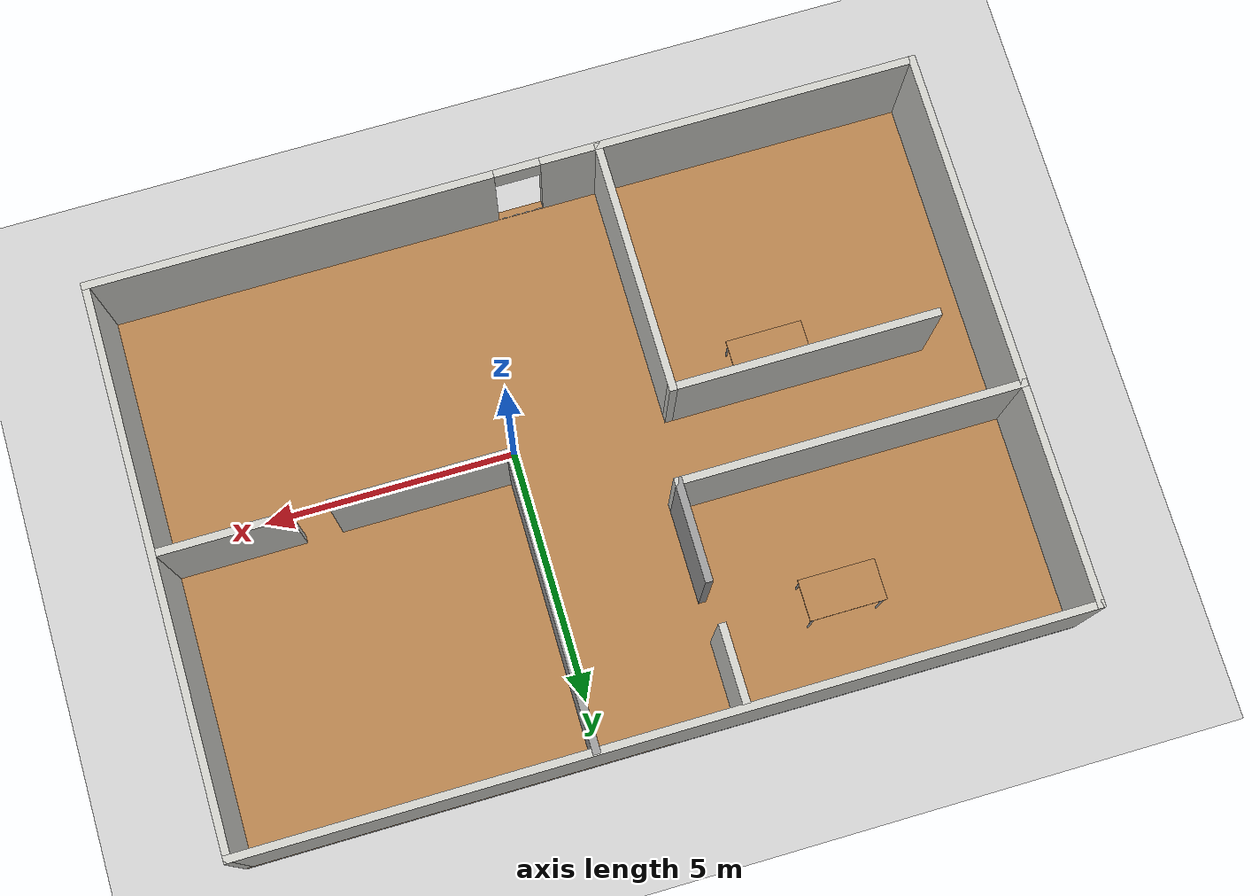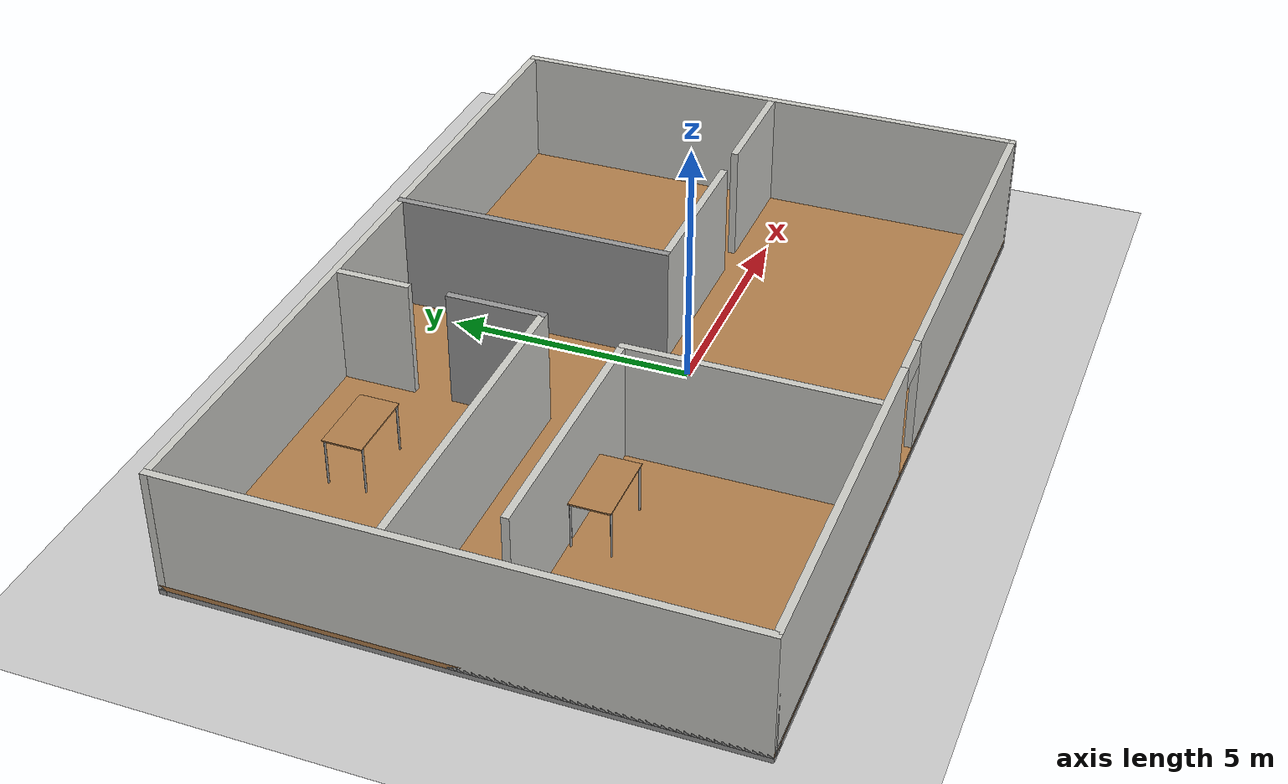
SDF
<sdf version="1.6">
 <world name="default">
  <model name="ground_plane">
   <static>1</static>
   <link name="link">
    <collision name="collision">
     <geometry><plane><normal>0 0 1</normal><size>100 100</size></plane></geometry>
     <surface>
      <contact><collide_bitmask>65535</collide_bitmask></contact>
      <friction><ode><mu>100</mu><mu2>50</mu2></ode></friction>
     </surface>
    </collision>
    <visual name="visual">
     <cast_shadows>0</cast_shadows>
     <geometry><plane><normal>0 0 1</normal><size>100 100</size></plane></geometry>
     <material>
      <script><uri>file://media/materials/scripts/gazebo.material</uri><name>Gazebo/Grey</name></script>
     </material>
    </visual>
   </link>
  </model>
  <model name="Home">
   <pose>-1.19678 0.732492 0 0 -0 0</pose>
   <link name="Floor_3">
    <collision name="Floor_3_Collision">
     <geometry><box><size>16.25 11 0.1</size></box></geometry>
     <pose>0 0 0.05 0 -0 0</pose>
    </collision>
    <visual name="Floor_3_Visual">
     <pose>0 0 0.05 0 -0 0</pose>
     <geometry><box><size>16.25 11 0.1</size></box></geometry>
     <material>
      <script><uri>file://media/materials/scripts/gazebo.material</uri><name>Gazebo/Wood</name></script>
      <ambient>1 1 1 1</ambient>
     </material>
     <meta><layer>1</layer></meta>
    </visual>
    <pose>-0 -0 0.1 0 -0 0</pose>
   </link>
   <link name="Wall_40">
    <collision name="Wall_40_Collision">
     <geometry><box><size>16 0.15 0.1</size></box></geometry>
     <pose>0 0 0.05 0 -0 0</pose>
    </collision>
    <visual name="Wall_40_Visual">
     <pose>0 0 0.05 0 -0 0</pose>
     <geometry><box><size>16 0.15 0.1</size></box></geometry>
     <material>
      <script><uri>file://media/materials/scripts/gazebo.material</uri><name>Gazebo/Grey</name></script>
      <ambient>1 1 1 1</ambient>
     </material>
     <meta><layer>0</layer></meta>
    </visual>
    <pose>0.125 -5.425 0 0 -0 0</pose>
   </link>
   <link name="Wall_41">
    <collision name="Wall_41_Collision">
     <geometry><box><size>11 0.15 0.1</size></box></geometry>
     <pose>0 0 0.05 0 -0 0</pose>
    </collision>
    <visual name="Wall_41_Visual">
     <pose>0 0 0.05 0 -0 0</pose>
     <geometry><box><size>11 0.15 0.1</size></box></geometry>
     <material>
      <script><uri>file://media/materials/scripts/gazebo.material</uri><name>Gazebo/Grey</name></script>
      <ambient>1 1 1 1</ambient>
     </material>
     <meta><layer>0</layer></meta>
    </visual>
    <pose>8.05 -0 0 0 -0 1.5708</pose>
   </link>
   <link name="Wall_42">
    <collision name="Wall_42_Collision">
     <geometry><box><size>16.25 0.15 0.1</size></box></geometry>
     <pose>0 0 0.05 0 -0 0</pose>
    </collision>
    <visual name="Wall_42_Visual">
     <pose>0 0 0.05 0 -0 0</pose>
     <geometry><box><size>16.25 0.15 0.1</size></box></geometry>
     <material>
      <script><uri>file://media/materials/scripts/gazebo.material</uri><name>Gazebo/Grey</name></script>
      <ambient>1 1 1 1</ambient>
     </material>
     <meta><layer>0</layer></meta>
    </visual>
    <pose>-0 5.425 0 0 -0 3.14159</pose>
   </link>
   <link name="Wall_43">
    <collision name="Wall_43_Collision">
     <geometry><box><size>11 0.15 0.1</size></box></geometry>
     <pose>0 0 0.05 0 -0 0</pose>
    </collision>
    <visual name="Wall_43_Visual">
     <pose>0 0 0.05 0 -0 0</pose>
     <geometry><box><size>11 0.15 0.1</size></box></geometry>
     <material>
      <script><uri>file://media/materials/scripts/gazebo.material</uri><name>Gazebo/Grey</name></script>
      <ambient>1 1 1 1</ambient>
     </material>
     <meta><layer>0</layer></meta>
    </visual>
    <pose>-8.05 -0 0 0 -0 -1.5708</pose>
   </link>
   <link name="Wall_44">
    <collision name="Wall_44_Collision">
     <geometry><box><size>0.4 0.15 0.1</size></box></geometry>
     <pose>0 0 0.05 0 -0 0</pose>
    </collision>
    <visual name="Wall_44_Visual">
     <pose>0 0 0.05 0 -0 0</pose>
     <geometry><box><size>0.4 0.15 0.1</size></box></geometry>
     <material>
      <script><uri>file://media/materials/scripts/gazebo.material</uri><name>Gazebo/Grey</name></script>
      <ambient>1 1 1 1</ambient>
     </material>
     <meta><layer>0</layer></meta>
    </visual>
    <pose>-7.925 -5.425 0 0 -0 0</pose>
   </link>
   <link name="Wall_56">
    <collision name="Wall_56_Collision">
     <geometry><box><size>16 0.15 0.1</size></box></geometry>
     <pose>0 0 0.05 0 -0 0</pose>
    </collision>
    <visual name="Wall_56_Visual">
     <pose>0 0 0.05 0 -0 0</pose>
     <geometry><box><size>16 0.15 0.1</size></box></geometry>
     <material>
      <script><uri>file://media/materials/scripts/gazebo.material</uri><name>Gazebo/Grey</name></script>
      <ambient>1 1 1 1</ambient>
     </material>
     <meta><layer>1</layer></meta>
    </visual>
    <pose>0.125 -5.425 0.1 0 -0 0</pose>
   </link>
   <link name="Wall_57">
    <collision name="Wall_57_Collision">
     <geometry><box><size>11 0.15 0.1</size></box></geometry>
     <pose>0 0 0.05 0 -0 0</pose>
    </collision>
    <visual name="Wall_57_Visual">
     <pose>0 0 0.05 0 -0 0</pose>
     <geometry><box><size>11 0.15 0.1</size></box></geometry>
     <material>
      <script><uri>file://media/materials/scripts/gazebo.material</uri><name>Gazebo/Grey</name></script>
      <ambient>1 1 1 1</ambient>
     </material>
     <meta><layer>1</layer></meta>
    </visual>
    <pose>8.05 -0 0.1 0 -0 1.5708</pose>
   </link>
   <link name="Wall_58">
    <collision name="Wall_58_Collision">
     <geometry><box><size>16.25 0.15 0.1</size></box></geometry>
     <pose>0 0 0.05 0 -0 0</pose>
    </collision>
    <visual name="Wall_58_Visual">
     <pose>0 0 0.05 0 -0 0</pose>
     <geometry><box><size>16.25 0.15 0.1</size></box></geometry>
     <material>
      <script><uri>file://media/materials/scripts/gazebo.material</uri><name>Gazebo/Grey</name></script>
      <ambient>1 1 1 1</ambient>
     </material>
     <meta><layer>1</layer></meta>
    </visual>
    <pose>-0 5.425 0.1 0 -0 3.14159</pose>
   </link>
   <link name="Wall_59">
    <collision name="Wall_59_Collision">
     <geometry><box><size>11 0.15 0.1</size></box></geometry>
     <pose>0 0 0.05 0 -0 0</pose>
    </collision>
    <visual name="Wall_59_Visual">
     <pose>0 0 0.05 0 -0 0</pose>
     <geometry><box><size>11 0.15 0.1</size></box></geometry>
     <material>
      <script><uri>file://media/materials/scripts/gazebo.material</uri><name>Gazebo/Grey</name></script>
      <ambient>1 1 1 1</ambient>
     </material>
     <meta><layer>1</layer></meta>
    </visual>
    <pose>-8.05 -0 0.1 0 -0 -1.5708</pose>
   </link>
   <link name="Wall_60">
    <collision name="Wall_60_Collision">
     <geometry><box><size>0.4 0.15 0.1</size></box></geometry>
     <pose>0 0 0.05 0 -0 0</pose>
    </collision>
    <visual name="Wall_60_Visual">
     <pose>0 0 0.05 0 -0 0</pose>
     <geometry><box><size>0.4 0.15 0.1</size></box></geometry>
     <material>
      <script><uri>file://media/materials/scripts/gazebo.material</uri><name>Gazebo/Grey</name></script>
      <ambient>1 1 1 1</ambient>
     </material>
     <meta><layer>1</layer></meta>
    </visual>
    <pose>-7.925 -5.425 0.1 0 -0 0</pose>
   </link>
   <link name="Wall_61">
    <collision name="Wall_61_Collision">
     <geometry><box><size>11 0.15 2.5</size></box></geometry>
     <pose>0 0 1.25 0 -0 0</pose>
    </collision>
    <visual name="Wall_61_Visual">
     <pose>0 0 1.25 0 -0 0</pose>
     <geometry><box><size>11 0.15 2.5</size></box></geometry>
     <material>
      <script><uri>file://media/materials/scripts/gazebo.material</uri><name>Gazebo/CeilingTiled</name></script>
      <ambient>1 1 1 1</ambient>
     </material>
     <meta><layer>1</layer></meta>
    </visual>
    <pose>-8.05 -0 0.1 0 -0 -1.5708</pose>
   </link>
   <link name="Wall_62">
    <pose>-0 -5.425 0.1 0 -0 0</pose>
    <visual name="Wall_62_Visual_0">
     <pose>-4.41027 0 1.25 0 -0 0</pose>
     <geometry><box><size>7.42945 0.15 2.5</size></box></geometry>
     <material>
      <script><uri>file://media/materials/scripts/gazebo.material</uri><name>Gazebo/CeilingTiled</name></script>
      <ambient>1 1 1 1</ambient>
     </material>
     <meta><layer>1</layer></meta>
    </visual>
    <collision name="Wall_62_Collision_0">
     <geometry><box><size>7.42945 0.15 2.5</size></box></geometry>
     <pose>-4.41027 0 1.25 0 -0 0</pose>
    </collision>
    <visual name="Wall_62_Visual_1">
     <pose>4.16473 0 1.25 0 -0 0</pose>
     <geometry><box><size>7.92055 0.15 2.5</size></box></geometry>
     <material>
      <script><uri>file://media/materials/scripts/gazebo.material</uri><name>Gazebo/CeilingTiled</name></script>
      <ambient>1 1 1 1</ambient>
     </material>
     <meta><layer>1</layer></meta>
    </visual>
    <collision name="Wall_62_Collision_1">
     <geometry><box><size>7.92055 0.15 2.5</size></box></geometry>
     <pose>4.16473 0 1.25 0 -0 0</pose>
    </collision>
    <visual name="Wall_62_Visual_2">
     <pose>-0.245546 0 2.25 0 -0 0</pose>
     <geometry><box><size>0.9 0.15 0.5</size></box></geometry>
     <material>
      <script><uri>file://media/materials/scripts/gazebo.material</uri><name>Gazebo/CeilingTiled</name></script>
      <ambient>1 1 1 1</ambient>
     </material>
     <meta><layer>1</layer></meta>
    </visual>
    <collision name="Wall_62_Collision_2">
     <geometry><box><size>0.9 0.15 0.5</size></box></geometry>
     <pose>-0.245546 0 2.25 0 -0 0</pose>
    </collision>
   </link>
   <link name="Wall_63">
    <collision name="Wall_63_Collision">
     <geometry><box><size>11 0.15 2.5</size></box></geometry>
     <pose>0 0 1.25 0 -0 0</pose>
    </collision>
    <visual name="Wall_63_Visual">
     <pose>0 0 1.25 0 -0 0</pose>
     <geometry><box><size>11 0.15 2.5</size></box></geometry>
     <material>
      <script><uri>file://media/materials/scripts/gazebo.material</uri><name>Gazebo/CeilingTiled</name></script>
      <ambient>1 1 1 1</ambient>
     </material>
     <meta><layer>1</layer></meta>
    </visual>
    <pose>8.05 -0 0.1 0 -0 1.5708</pose>
   </link>
   <link name="Wall_64">
    <collision name="Wall_64_Collision">
     <geometry><box><size>16.25 0.15 2.5</size></box></geometry>
     <pose>0 0 1.25 0 -0 0</pose>
    </collision>
    <visual name="Wall_64_Visual">
     <pose>0 0 1.25 0 -0 0</pose>
     <geometry><box><size>16.25 0.15 2.5</size></box></geometry>
     <material>
      <script><uri>file://media/materials/scripts/gazebo.material</uri><name>Gazebo/CeilingTiled</name></script>
      <ambient>1 1 1 1</ambient>
     </material>
     <meta><layer>1</layer></meta>
    </visual>
    <pose>-0 5.425 0.1 0 -0 3.14159</pose>
   </link>
   <link name="Wall_66">
    <collision name="Wall_66_Collision">
     <geometry><box><size>5 0.15 2.5</size></box></geometry>
     <pose>0 0 1.25 0 -0 0</pose>
    </collision>
    <visual name="Wall_66_Visual">
     <pose>0 0 1.25 0 -0 0</pose>
     <geometry><box><size>5 0.15 2.5</size></box></geometry>
     <material>
      <script><uri>file://media/materials/scripts/gazebo.material</uri><name>Gazebo/CeilingTiled</name></script>
      <ambient>1 1 1 1</ambient>
     </material>
     <meta><layer>1</layer></meta>
    </visual>
    <pose>-1.84156 -2.97388 0.1 0 -0 1.5708</pose>
   </link>
   <link name="Wall_67">
    <collision name="Wall_67_Collision">
     <geometry><box><size>5.25 0.15 2.5</size></box></geometry>
     <pose>0 0 1.25 0 -0 0</pose>
    </collision>
    <visual name="Wall_67_Visual">
     <pose>0 0 1.25 0 -0 0</pose>
     <geometry><box><size>5.25 0.15 2.5</size></box></geometry>
     <material>
      <script><uri>file://media/materials/scripts/gazebo.material</uri><name>Gazebo/CeilingTiled</name></script>
      <ambient>1 1 1 1</ambient>
     </material>
     <meta><layer>1</layer></meta>
    </visual>
    <pose>-4.39156 -0.548884 0.1 0 -0 3.14159</pose>
   </link>
   <link name="Wall_69">
    <collision name="Wall_69_Collision">
     <geometry><box><size>6.75 0.15 2.5</size></box></geometry>
     <pose>0 0 1.25 0 -0 0</pose>
    </collision>
    <visual name="Wall_69_Visual">
     <pose>0 0 1.25 0 -0 0</pose>
     <geometry><box><size>6.75 0.15 2.5</size></box></geometry>
     <material>
      <script><uri>file://media/materials/scripts/gazebo.material</uri><name>Gazebo/CeilingTiled</name></script>
      <ambient>1 1 1 1</ambient>
     </material>
     <meta><layer>1</layer></meta>
    </visual>
    <pose>-4.7394 1.17136 0.1 0 -0 0</pose>
   </link>
   <link name="Wall_70">
    <collision name="Wall_70_Collision">
     <geometry><box><size>2 0.15 2.5</size></box></geometry>
     <pose>0 0 1.25 0 -0 0</pose>
    </collision>
    <visual name="Wall_70_Visual">
     <pose>0 0 1.25 0 -0 0</pose>
     <geometry><box><size>2 0.15 2.5</size></box></geometry>
     <material>
      <script><uri>file://media/materials/scripts/gazebo.material</uri><name>Gazebo/Grey</name></script>
      <ambient>1 1 1 1</ambient>
     </material>
     <meta><layer>1</layer></meta>
    </visual>
    <pose>-1.43941 2.09637 0.1 0 -0 1.5708</pose>
   </link>
   <link name="Wall_72">
    <collision name="Wall_72_Collision">
     <geometry><box><size>1.5 0.15 2.5</size></box></geometry>
     <pose>0 0 1.25 0 -0 0</pose>
    </collision>
    <visual name="Wall_72_Visual">
     <pose>0 0 1.25 0 -0 0</pose>
     <geometry><box><size>1.5 0.15 2.5</size></box></geometry>
     <material>
      <script><uri>file://media/materials/scripts/gazebo.material</uri><name>Gazebo/CeilingTiled</name></script>
      <ambient>1 1 1 1</ambient>
     </material>
     <meta><layer>1</layer></meta>
    </visual>
    <pose>-1.44256 4.61279 0.1 0 -0 1.5708</pose>
   </link>
   <link name="Wall_74">
    <collision name="Wall_74_Collision">
     <geometry><box><size>5.75 0.15 2.5</size></box></geometry>
     <pose>0 0 1.25 0 -0 0</pose>
    </collision>
    <visual name="Wall_74_Visual">
     <pose>0 0 1.25 0 -0 0</pose>
     <geometry><box><size>5.75 0.15 2.5</size></box></geometry>
     <material>
      <script><uri>file://media/materials/scripts/gazebo.material</uri><name>Gazebo/Grey</name></script>
      <ambient>1 1 1 1</ambient>
     </material>
     <meta><layer>1</layer></meta>
    </visual>
    <pose>1.35047 2.6008 0.1 0 -0 -1.5708</pose>
   </link>
   <link name="Wall_75">
    <collision name="Wall_75_Collision">
     <geometry><box><size>3.5 0.15 2.5</size></box></geometry>
     <pose>0 0 1.25 0 -0 0</pose>
    </collision>
    <visual name="Wall_75_Visual">
     <pose>0 0 1.25 0 -0 0</pose>
     <geometry><box><size>3.5 0.15 2.5</size></box></geometry>
     <material>
      <script><uri>file://media/materials/scripts/gazebo.material</uri><name>Gazebo/CeilingTiled</name></script>
      <ambient>1 1 1 1</ambient>
     </material>
     <meta><layer>1</layer></meta>
    </visual>
    <pose>3.02547 -0.199203 0.1 0 -0 0</pose>
   </link>
   <link name="Wall_77">
    <collision name="Wall_77_Collision">
     <geometry><box><size>2.5 0.15 2.5</size></box></geometry>
     <pose>0 0 1.25 0 -0 0</pose>
    </collision>
    <visual name="Wall_77_Visual">
     <pose>0 0 1.25 0 -0 0</pose>
     <geometry><box><size>2.5 0.15 2.5</size></box></geometry>
     <material>
      <script><uri>file://media/materials/scripts/gazebo.material</uri><name>Gazebo/CeilingTiled</name></script>
      <ambient>1 1 1 1</ambient>
     </material>
     <meta><layer>1</layer></meta>
    </visual>
    <pose>6.7283 -0.185245 0.1 0 -0 0</pose>
   </link>
   <static>1</static>
  </model>
  <model name="table">
   <static>1</static>
   <link name="link">
    <collision name="surface">
     <pose>0 0 1 0 -0 0</pose>
     <geometry><box><size>1.5 0.8 0.03</size></box></geometry>
     <surface><friction><ode><mu>0.6</mu><mu2>0.6</mu2></ode></friction></surface>
    </collision>
    <visual name="visual1">
     <pose>0 0 1 0 -0 0</pose>
     <geometry><box><size>1.5 0.8 0.03</size></box></geometry>
     <material>
      <script><uri>file://media/materials/scripts/gazebo.material</uri><name>Gazebo/Wood</name></script>
     </material>
    </visual>
    <collision name="front_left_leg">
     <pose>0.68 0.38 0.5 0 -0 0</pose>
     <geometry><cylinder><radius>0.02</radius><length>1</length></cylinder></geometry>
    </collision>
    <visual name="front_left_leg">
     <pose>0.68 0.38 0.5 0 -0 0</pose>
     <geometry><cylinder><radius>0.02</radius><length>1</length></cylinder></geometry>
     <material>
      <script><uri>file://media/materials/scripts/gazebo.material</uri><name>Gazebo/Grey</name></script>
     </material>
    </visual>
    <collision name="front_right_leg">
     <pose>0.68 -0.38 0.5 0 -0 0</pose>
     <geometry><cylinder><radius>0.02</radius><length>1</length></cylinder></geometry>
    </collision>
    <visual name="front_right_leg">
     <pose>0.68 -0.38 0.5 0 -0 0</pose>
     <geometry><cylinder><radius>0.02</radius><length>1</length></cylinder></geometry>
     <material>
      <script><uri>file://media/materials/scripts/gazebo.material</uri><name>Gazebo/Grey</name></script>
     </material>
    </visual>
    <collision name="back_right_leg">
     <pose>-0.68 -0.38 0.5 0 -0 0</pose>
     <geometry><cylinder><radius>0.02</radius><length>1</length></cylinder></geometry>
    </collision>
    <visual name="back_right_leg">
     <pose>-0.68 -0.38 0.5 0 -0 0</pose>
     <geometry><cylinder><radius>0.02</radius><length>1</length></cylinder></geometry>
     <material>
      <script><uri>file://media/materials/scripts/gazebo.material</uri><name>Gazebo/Grey</name></script>
     </material>
    </visual>
    <collision name="back_left_leg">
     <pose>-0.68 0.38 0.5 0 -0 0</pose>
     <geometry><cylinder><radius>0.02</radius><length>1</length></cylinder></geometry>
    </collision>
    <visual name="back_left_leg">
     <pose>-0.68 0.38 0.5 0 -0 0</pose>
     <geometry><cylinder><radius>0.02</radius><length>1</length></cylinder></geometry>
     <material>
      <script><uri>file://media/materials/scripts/gazebo.material</uri><name>Gazebo/Grey</name></script>
     </material>
    </visual>
   </link>
   <pose>-5.18068 -0.325373 0.178292 0 -0 0</pose>
  </model>
  <model name="table_0">
   <static>1</static>
   <link name="link">
    <collision name="surface">
     <pose>0 0 1 0 -0 0</pose>
     <geometry><box><size>1.5 0.8 0.03</size></box></geometry>
     <surface><friction><ode><mu>0.6</mu><mu2>0.6</mu2></ode></friction></surface>
    </collision>
    <visual name="visual1">
     <pose>0 0 1 0 -0 0</pose>
     <geometry><box><size>1.5 0.8 0.03</size></box></geometry>
     <material>
      <script><uri>file://media/materials/scripts/gazebo.material</uri><name>Gazebo/Wood</name></script>
     </material>
    </visual>
    <collision name="front_left_leg">
     <pose>0.68 0.38 0.5 0 -0 0</pose>
     <geometry><cylinder><radius>0.02</radius><length>1</length></cylinder></geometry>
    </collision>
    <visual name="front_left_leg">
     <pose>0.68 0.38 0.5 0 -0 0</pose>
     <geometry><cylinder><radius>0.02</radius><length>1</length></cylinder></geometry>
     <material>
      <script><uri>file://media/materials/scripts/gazebo.material</uri><name>Gazebo/Grey</name></script>
     </material>
    </visual>
    <collision name="front_right_leg">
     <pose>0.68 -0.38 0.5 0 -0 0</pose>
     <geometry><cylinder><radius>0.02</radius><length>1</length></cylinder></geometry>
    </collision>
    <visual name="front_right_leg">
     <pose>0.68 -0.38 0.5 0 -0 0</pose>
     <geometry><cylinder><radius>0.02</radius><length>1</length></cylinder></geometry>
     <material>
      <script><uri>file://media/materials/scripts/gazebo.material</uri><name>Gazebo/Grey</name></script>
     </material>
    </visual>
    <collision name="back_right_leg">
     <pose>-0.68 -0.38 0.5 0 -0 0</pose>
     <geometry><cylinder><radius>0.02</radius><length>1</length></cylinder></geometry>
    </collision>
    <visual name="back_right_leg">
     <pose>-0.68 -0.38 0.5 0 -0 0</pose>
     <geometry><cylinder><radius>0.02</radius><length>1</length></cylinder></geometry>
     <material>
      <script><uri>file://media/materials/scripts/gazebo.material</uri><name>Gazebo/Grey</name></script>
     </material>
    </visual>
    <collision name="back_left_leg">
     <pose>-0.68 0.38 0.5 0 -0 0</pose>
     <geometry><cylinder><radius>0.02</radius><length>1</length></cylinder></geometry>
    </collision>
    <visual name="back_left_leg">
     <pose>-0.68 0.38 0.5 0 -0 0</pose>
     <geometry><cylinder><radius>0.02</radius><length>1</length></cylinder></geometry>
     <material>
      <script><uri>file://media/materials/scripts/gazebo.material</uri><name>Gazebo/Grey</name></script>
     </material>
    </visual>
   </link>
   <pose>-5.11149 4.45601 0.188979 0 -0 0</pose>
  </model>
 </world>
</sdf>
